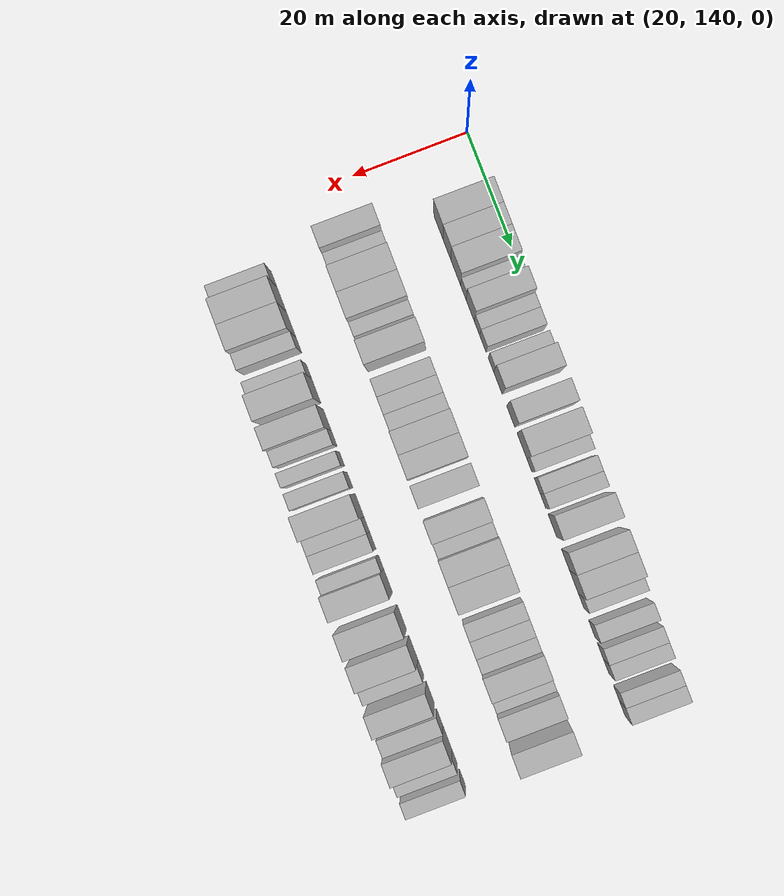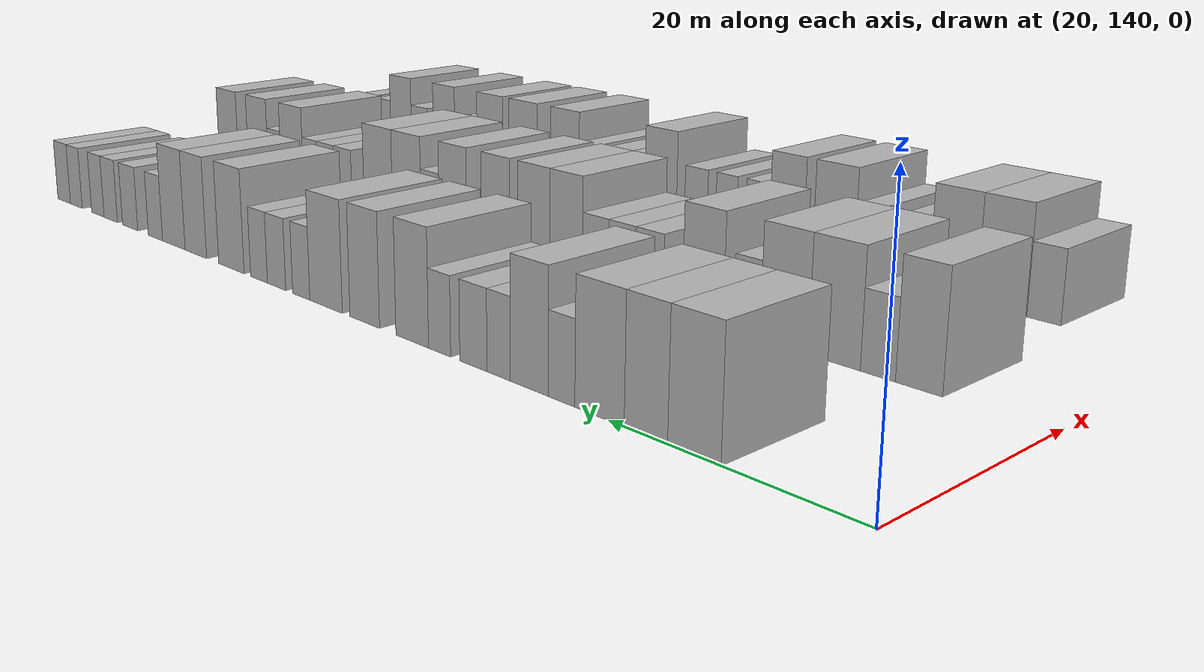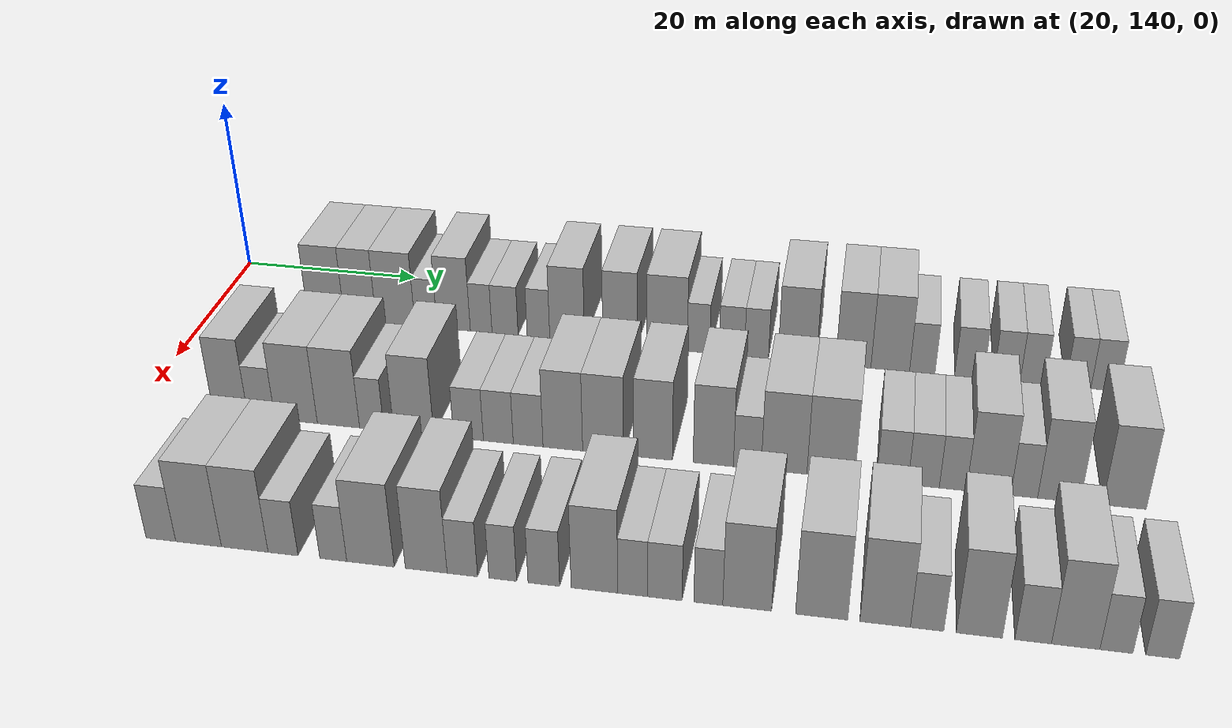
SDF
<sdf version="1.6">
 <world name="default">
  <model name="building_88">
   <static>1</static>
   <pose>25.0000 152.9174 0 0.000000 0.000000 0.000000</pose>
   <link name="link">
    <pose>0 0 4.50 0 0 0</pose>
    <collision name="collision"><geometry><box><size>10.0000 4.2095 9.0000</size></box></geometry></collision>
    <visual name="visual">
     <cast_shadows>0</cast_shadows>
     <geometry><box><size>10.0000 4.2095 9.0000</size></box></geometry>
     <material>
      <script>
       <uri>model://HANNAS_wall/materials/scripts</uri>
       <uri>model://HANNAS_wall/materials/textures</uri>
       <name>vrc/HANNAS_wall</name>
      </script>
     </material>
    </visual>
   </link>
  </model>
  <model name="building_89">
   <static>1</static>
   <pose>25.0000 156.8447 0 0.000000 0.000000 0.000000</pose>
   <link name="link">
    <pose>0 0 4.50 0 0 0</pose>
    <collision name="collision"><geometry><box><size>10.0000 3.6452 9.0000</size></box></geometry></collision>
    <visual name="visual">
     <cast_shadows>0</cast_shadows>
     <geometry><box><size>10.0000 3.6452 9.0000</size></box></geometry>
     <material>
      <script>
       <uri>model://HANNAS_wall/materials/scripts</uri>
       <uri>model://HANNAS_wall/materials/textures</uri>
       <name>vrc/HANNAS_wall</name>
      </script>
     </material>
    </visual>
   </link>
  </model>
  <model name="building_90">
   <static>1</static>
   <pose>25.0000 160.8700 0 0.000000 0.000000 0.000000</pose>
   <link name="link">
    <pose>0 0 4.50 0 0 0</pose>
    <collision name="collision"><geometry><box><size>10.0000 4.4053 9.0000</size></box></geometry></collision>
    <visual name="visual">
     <cast_shadows>0</cast_shadows>
     <geometry><box><size>10.0000 4.4053 9.0000</size></box></geometry>
     <material>
      <script>
       <uri>model://HANNAS_wall/materials/scripts</uri>
       <uri>model://HANNAS_wall/materials/textures</uri>
       <name>vrc/HANNAS_wall</name>
      </script>
     </material>
    </visual>
   </link>
  </model>
  <model name="building_91">
   <static>1</static>
   <pose>25.0000 164.3211 0 0.000000 0.000000 0.000000</pose>
   <link name="link">
    <pose>0 0 3.00 0 0 0</pose>
    <collision name="collision"><geometry><box><size>10.0000 2.4969 6.0000</size></box></geometry></collision>
    <visual name="visual">
     <cast_shadows>0</cast_shadows>
     <geometry><box><size>10.0000 2.4969 6.0000</size></box></geometry>
     <material>
      <script>
       <uri>model://HANNAS_wall/materials/scripts</uri>
       <uri>model://HANNAS_wall/materials/textures</uri>
       <name>vrc/HANNAS_wall</name>
      </script>
     </material>
    </visual>
   </link>
  </model>
  <model name="building_92">
   <static>1</static>
   <pose>25.0000 167.4333 0 0.000000 0.000000 0.000000</pose>
   <link name="link">
    <pose>0 0 4.50 0 0 0</pose>
    <collision name="collision"><geometry><box><size>10.0000 3.7276 9.0000</size></box></geometry></collision>
    <visual name="visual">
     <cast_shadows>0</cast_shadows>
     <geometry><box><size>10.0000 3.7276 9.0000</size></box></geometry>
     <material>
      <script>
       <uri>model://HANNAS_wall/materials/scripts</uri>
       <uri>model://HANNAS_wall/materials/textures</uri>
       <name>vrc/HANNAS_wall</name>
      </script>
     </material>
    </visual>
   </link>
  </model>
  <model name="building_93">
   <static>1</static>
   <pose>25.0000 170.5028 0 0.000000 0.000000 0.000000</pose>
   <link name="link">
    <pose>0 0 3.00 0 0 0</pose>
    <collision name="collision"><geometry><box><size>10.0000 2.4114 6.0000</size></box></geometry></collision>
    <visual name="visual">
     <cast_shadows>0</cast_shadows>
     <geometry><box><size>10.0000 2.4114 6.0000</size></box></geometry>
     <material>
      <script>
       <uri>model://HANNAS_wall/materials/scripts</uri>
       <uri>model://HANNAS_wall/materials/textures</uri>
       <name>vrc/HANNAS_wall</name>
      </script>
     </material>
    </visual>
   </link>
  </model>
  <model name="building_94">
   <static>1</static>
   <pose>25.0000 173.1614 0 0.000000 0.000000 0.000000</pose>
   <link name="link">
    <pose>0 0 3.00 0 0 0</pose>
    <collision name="collision"><geometry><box><size>10.0000 2.9058 6.0000</size></box></geometry></collision>
    <visual name="visual">
     <cast_shadows>0</cast_shadows>
     <geometry><box><size>10.0000 2.9058 6.0000</size></box></geometry>
     <material>
      <script>
       <uri>model://HANNAS_wall/materials/scripts</uri>
       <uri>model://HANNAS_wall/materials/textures</uri>
       <name>vrc/HANNAS_wall</name>
      </script>
     </material>
    </visual>
   </link>
  </model>
  <model name="building_95">
   <static>1</static>
   <pose>25.0000 176.8598 0 0.000000 0.000000 0.000000</pose>
   <link name="link">
    <pose>0 0 3.00 0 0 0</pose>
    <collision name="collision"><geometry><box><size>10.0000 2.4910 6.0000</size></box></geometry></collision>
    <visual name="visual">
     <cast_shadows>0</cast_shadows>
     <geometry><box><size>10.0000 2.4910 6.0000</size></box></geometry>
     <material>
      <script>
       <uri>model://HANNAS_wall/materials/scripts</uri>
       <uri>model://HANNAS_wall/materials/textures</uri>
       <name>vrc/HANNAS_wall</name>
      </script>
     </material>
    </visual>
   </link>
  </model>
  <model name="building_96">
   <static>1</static>
   <pose>25.0000 180.0171 0 0.000000 0.000000 0.000000</pose>
   <link name="link">
    <pose>0 0 4.50 0 0 0</pose>
    <collision name="collision"><geometry><box><size>10.0000 3.8236 9.0000</size></box></geometry></collision>
    <visual name="visual">
     <cast_shadows>0</cast_shadows>
     <geometry><box><size>10.0000 3.8236 9.0000</size></box></geometry>
     <material>
      <script>
       <uri>model://HANNAS_wall/materials/scripts</uri>
       <uri>model://HANNAS_wall/materials/textures</uri>
       <name>vrc/HANNAS_wall</name>
      </script>
     </material>
    </visual>
   </link>
  </model>
  <model name="building_97">
   <static>1</static>
   <pose>25.0000 185.7977 0 0.000000 0.000000 0.000000</pose>
   <link name="link">
    <pose>0 0 4.50 0 0 0</pose>
    <collision name="collision"><geometry><box><size>10.0000 3.7378 9.0000</size></box></geometry></collision>
    <visual name="visual">
     <cast_shadows>0</cast_shadows>
     <geometry><box><size>10.0000 3.7378 9.0000</size></box></geometry>
     <material>
      <script>
       <uri>model://HANNAS_wall/materials/scripts</uri>
       <uri>model://HANNAS_wall/materials/textures</uri>
       <name>vrc/HANNAS_wall</name>
      </script>
     </material>
    </visual>
   </link>
  </model>
  <model name="building_98">
   <static>1</static>
   <pose>25.0000 190.8588 0 0.000000 0.000000 0.000000</pose>
   <link name="link">
    <pose>0 0 4.50 0 0 0</pose>
    <collision name="collision"><geometry><box><size>10.0000 4.3843 9.0000</size></box></geometry></collision>
    <visual name="visual">
     <cast_shadows>0</cast_shadows>
     <geometry><box><size>10.0000 4.3843 9.0000</size></box></geometry>
     <material>
      <script>
       <uri>model://HANNAS_wall/materials/scripts</uri>
       <uri>model://HANNAS_wall/materials/textures</uri>
       <name>vrc/HANNAS_wall</name>
      </script>
     </material>
    </visual>
   </link>
  </model>
  <model name="building_99">
   <static>1</static>
   <pose>25.0000 194.2553 0 0.000000 0.000000 0.000000</pose>
   <link name="link">
    <pose>0 0 3.00 0 0 0</pose>
    <collision name="collision"><geometry><box><size>10.0000 2.4088 6.0000</size></box></geometry></collision>
    <visual name="visual">
     <cast_shadows>0</cast_shadows>
     <geometry><box><size>10.0000 2.4088 6.0000</size></box></geometry>
     <material>
      <script>
       <uri>model://HANNAS_wall/materials/scripts</uri>
       <uri>model://HANNAS_wall/materials/textures</uri>
       <name>vrc/HANNAS_wall</name>
      </script>
     </material>
    </visual>
   </link>
  </model>
  <model name="building_100">
   <static>1</static>
   <pose>25.0000 197.8041 0 0.000000 0.000000 0.000000</pose>
   <link name="link">
    <pose>0 0 3.00 0 0 0</pose>
    <collision name="collision"><geometry><box><size>10.0000 2.6887 6.0000</size></box></geometry></collision>
    <visual name="visual">
     <cast_shadows>0</cast_shadows>
     <geometry><box><size>10.0000 2.6887 6.0000</size></box></geometry>
     <material>
      <script>
       <uri>model://HANNAS_wall/materials/scripts</uri>
       <uri>model://HANNAS_wall/materials/textures</uri>
       <name>vrc/HANNAS_wall</name>
      </script>
     </material>
    </visual>
   </link>
  </model>
  <model name="building_101">
   <static>1</static>
   <pose>25.0000 200.4228 0 0.000000 0.000000 0.000000</pose>
   <link name="link">
    <pose>0 0 3.00 0 0 0</pose>
    <collision name="collision"><geometry><box><size>10.0000 2.5487 6.0000</size></box></geometry></collision>
    <visual name="visual">
     <cast_shadows>0</cast_shadows>
     <geometry><box><size>10.0000 2.5487 6.0000</size></box></geometry>
     <material>
      <script>
       <uri>model://HANNAS_wall/materials/scripts</uri>
       <uri>model://HANNAS_wall/materials/textures</uri>
       <name>vrc/HANNAS_wall</name>
      </script>
     </material>
    </visual>
   </link>
  </model>
  <model name="building_102">
   <static>1</static>
   <pose>25.0000 204.7182 0 0.000000 0.000000 0.000000</pose>
   <link name="link">
    <pose>0 0 4.50 0 0 0</pose>
    <collision name="collision"><geometry><box><size>10.0000 4.0421 9.0000</size></box></geometry></collision>
    <visual name="visual">
     <cast_shadows>0</cast_shadows>
     <geometry><box><size>10.0000 4.0421 9.0000</size></box></geometry>
     <material>
      <script>
       <uri>model://HANNAS_wall/materials/scripts</uri>
       <uri>model://HANNAS_wall/materials/textures</uri>
       <name>vrc/HANNAS_wall</name>
      </script>
     </material>
    </visual>
   </link>
  </model>
  <model name="building_103">
   <static>1</static>
   <pose>25.0000 210.5705 0 0.000000 0.000000 0.000000</pose>
   <link name="link">
    <pose>0 0 4.50 0 0 0</pose>
    <collision name="collision"><geometry><box><size>10.0000 3.6625 9.0000</size></box></geometry></collision>
    <visual name="visual">
     <cast_shadows>0</cast_shadows>
     <geometry><box><size>10.0000 3.6625 9.0000</size></box></geometry>
     <material>
      <script>
       <uri>model://HANNAS_wall/materials/scripts</uri>
       <uri>model://HANNAS_wall/materials/textures</uri>
       <name>vrc/HANNAS_wall</name>
      </script>
     </material>
    </visual>
   </link>
  </model>
  <model name="building_104">
   <static>1</static>
   <pose>25.0000 214.3984 0 0.000000 0.000000 0.000000</pose>
   <link name="link">
    <pose>0 0 4.50 0 0 0</pose>
    <collision name="collision"><geometry><box><size>10.0000 3.9932 9.0000</size></box></geometry></collision>
    <visual name="visual">
     <cast_shadows>0</cast_shadows>
     <geometry><box><size>10.0000 3.9932 9.0000</size></box></geometry>
     <material>
      <script>
       <uri>model://HANNAS_wall/materials/scripts</uri>
       <uri>model://HANNAS_wall/materials/textures</uri>
       <name>vrc/HANNAS_wall</name>
      </script>
     </material>
    </visual>
   </link>
  </model>
  <model name="building_105">
   <static>1</static>
   <pose>25.0000 217.6991 0 0.000000 0.000000 0.000000</pose>
   <link name="link">
    <pose>0 0 3.00 0 0 0</pose>
    <collision name="collision"><geometry><box><size>10.0000 2.6081 6.0000</size></box></geometry></collision>
    <visual name="visual">
     <cast_shadows>0</cast_shadows>
     <geometry><box><size>10.0000 2.6081 6.0000</size></box></geometry>
     <material>
      <script>
       <uri>model://HANNAS_wall/materials/scripts</uri>
       <uri>model://HANNAS_wall/materials/textures</uri>
       <name>vrc/HANNAS_wall</name>
      </script>
     </material>
    </visual>
   </link>
  </model>
  <model name="building_106">
   <static>1</static>
   <pose>25.0000 222.4741 0 0.000000 0.000000 0.000000</pose>
   <link name="link">
    <pose>0 0 3.00 0 0 0</pose>
    <collision name="collision"><geometry><box><size>10.0000 2.9419 6.0000</size></box></geometry></collision>
    <visual name="visual">
     <cast_shadows>0</cast_shadows>
     <geometry><box><size>10.0000 2.9419 6.0000</size></box></geometry>
     <material>
      <script>
       <uri>model://HANNAS_wall/materials/scripts</uri>
       <uri>model://HANNAS_wall/materials/textures</uri>
       <name>vrc/HANNAS_wall</name>
      </script>
     </material>
    </visual>
   </link>
  </model>
  <model name="building_107">
   <static>1</static>
   <pose>25.0000 226.2903 0 0.000000 0.000000 0.000000</pose>
   <link name="link">
    <pose>0 0 3.00 0 0 0</pose>
    <collision name="collision"><geometry><box><size>10.0000 2.6904 6.0000</size></box></geometry></collision>
    <visual name="visual">
     <cast_shadows>0</cast_shadows>
     <geometry><box><size>10.0000 2.6904 6.0000</size></box></geometry>
     <material>
      <script>
       <uri>model://HANNAS_wall/materials/scripts</uri>
       <uri>model://HANNAS_wall/materials/textures</uri>
       <name>vrc/HANNAS_wall</name>
      </script>
     </material>
    </visual>
   </link>
  </model>
  <model name="building_108">
   <static>1</static>
   <pose>25.0000 228.9185 0 0.000000 0.000000 0.000000</pose>
   <link name="link">
    <pose>0 0 3.00 0 0 0</pose>
    <collision name="collision"><geometry><box><size>10.0000 2.5660 6.0000</size></box></geometry></collision>
    <visual name="visual">
     <cast_shadows>0</cast_shadows>
     <geometry><box><size>10.0000 2.5660 6.0000</size></box></geometry>
     <material>
      <script>
       <uri>model://HANNAS_wall/materials/scripts</uri>
       <uri>model://HANNAS_wall/materials/textures</uri>
       <name>vrc/HANNAS_wall</name>
      </script>
     </material>
    </visual>
   </link>
  </model>
  <model name="building_109">
   <static>1</static>
   <pose>25.0000 233.4652 0 0.000000 0.000000 0.000000</pose>
   <link name="link">
    <pose>0 0 3.00 0 0 0</pose>
    <collision name="collision"><geometry><box><size>10.0000 2.5274 6.0000</size></box></geometry></collision>
    <visual name="visual">
     <cast_shadows>0</cast_shadows>
     <geometry><box><size>10.0000 2.5274 6.0000</size></box></geometry>
     <material>
      <script>
       <uri>model://HANNAS_wall/materials/scripts</uri>
       <uri>model://HANNAS_wall/materials/textures</uri>
       <name>vrc/HANNAS_wall</name>
      </script>
     </material>
    </visual>
   </link>
  </model>
  <model name="building_110">
   <static>1</static>
   <pose>25.0000 236.1146 0 0.000000 0.000000 0.000000</pose>
   <link name="link">
    <pose>0 0 3.00 0 0 0</pose>
    <collision name="collision"><geometry><box><size>10.0000 2.7714 6.0000</size></box></geometry></collision>
    <visual name="visual">
     <cast_shadows>0</cast_shadows>
     <geometry><box><size>10.0000 2.7714 6.0000</size></box></geometry>
     <material>
      <script>
       <uri>model://HANNAS_wall/materials/scripts</uri>
       <uri>model://HANNAS_wall/materials/textures</uri>
       <name>vrc/HANNAS_wall</name>
      </script>
     </material>
    </visual>
   </link>
  </model>
  <model name="building_203">
   <static>1</static>
   <pose>44.0000 149.8460 0 0.000000 0.000000 0.000000</pose>
   <link name="link">
    <pose>0 0 4.50 0 0 0</pose>
    <collision name="collision"><geometry><box><size>10.0000 3.6402 9.0000</size></box></geometry></collision>
    <visual name="visual">
     <cast_shadows>0</cast_shadows>
     <geometry><box><size>10.0000 3.6402 9.0000</size></box></geometry>
     <material>
      <script>
       <uri>model://HANNAS_wall/materials/scripts</uri>
       <uri>model://HANNAS_wall/materials/textures</uri>
       <name>vrc/HANNAS_wall</name>
      </script>
     </material>
    </visual>
   </link>
  </model>
  <model name="building_204">
   <static>1</static>
   <pose>44.0000 153.0806 0 0.000000 0.000000 0.000000</pose>
   <link name="link">
    <pose>0 0 3.00 0 0 0</pose>
    <collision name="collision"><geometry><box><size>10.0000 2.8291 6.0000</size></box></geometry></collision>
    <visual name="visual">
     <cast_shadows>0</cast_shadows>
     <geometry><box><size>10.0000 2.8291 6.0000</size></box></geometry>
     <material>
      <script>
       <uri>model://HANNAS_wall/materials/scripts</uri>
       <uri>model://HANNAS_wall/materials/textures</uri>
       <name>vrc/HANNAS_wall</name>
      </script>
     </material>
    </visual>
   </link>
  </model>
  <model name="building_205">
   <static>1</static>
   <pose>44.0000 156.6990 0 0.000000 0.000000 0.000000</pose>
   <link name="link">
    <pose>0 0 4.50 0 0 0</pose>
    <collision name="collision"><geometry><box><size>10.0000 4.4077 9.0000</size></box></geometry></collision>
    <visual name="visual">
     <cast_shadows>0</cast_shadows>
     <geometry><box><size>10.0000 4.4077 9.0000</size></box></geometry>
     <material>
      <script>
       <uri>model://HANNAS_wall/materials/scripts</uri>
       <uri>model://HANNAS_wall/materials/textures</uri>
       <name>vrc/HANNAS_wall</name>
      </script>
     </material>
    </visual>
   </link>
  </model>
  <model name="building_206">
   <static>1</static>
   <pose>44.0000 161.0784 0 0.000000 0.000000 0.000000</pose>
   <link name="link">
    <pose>0 0 4.50 0 0 0</pose>
    <collision name="collision"><geometry><box><size>10.0000 4.3512 9.0000</size></box></geometry></collision>
    <visual name="visual">
     <cast_shadows>0</cast_shadows>
     <geometry><box><size>10.0000 4.3512 9.0000</size></box></geometry>
     <material>
      <script>
       <uri>model://HANNAS_wall/materials/scripts</uri>
       <uri>model://HANNAS_wall/materials/textures</uri>
       <name>vrc/HANNAS_wall</name>
      </script>
     </material>
    </visual>
   </link>
  </model>
  <model name="building_207">
   <static>1</static>
   <pose>44.0000 164.5010 0 0.000000 0.000000 0.000000</pose>
   <link name="link">
    <pose>0 0 3.00 0 0 0</pose>
    <collision name="collision"><geometry><box><size>10.0000 2.4940 6.0000</size></box></geometry></collision>
    <visual name="visual">
     <cast_shadows>0</cast_shadows>
     <geometry><box><size>10.0000 2.4940 6.0000</size></box></geometry>
     <material>
      <script>
       <uri>model://HANNAS_wall/materials/scripts</uri>
       <uri>model://HANNAS_wall/materials/textures</uri>
       <name>vrc/HANNAS_wall</name>
      </script>
     </material>
    </visual>
   </link>
  </model>
  <model name="building_208">
   <static>1</static>
   <pose>44.0000 168.7801 0 0.000000 0.000000 0.000000</pose>
   <link name="link">
    <pose>0 0 4.50 0 0 0</pose>
    <collision name="collision"><geometry><box><size>10.0000 4.0643 9.0000</size></box></geometry></collision>
    <visual name="visual">
     <cast_shadows>0</cast_shadows>
     <geometry><box><size>10.0000 4.0643 9.0000</size></box></geometry>
     <material>
      <script>
       <uri>model://HANNAS_wall/materials/scripts</uri>
       <uri>model://HANNAS_wall/materials/textures</uri>
       <name>vrc/HANNAS_wall</name>
      </script>
     </material>
    </visual>
   </link>
  </model>
  <model name="building_209">
   <static>1</static>
   <pose>44.0000 174.3055 0 0.000000 0.000000 0.000000</pose>
   <link name="link">
    <pose>0 0 3.00 0 0 0</pose>
    <collision name="collision"><geometry><box><size>10.0000 2.9864 6.0000</size></box></geometry></collision>
    <visual name="visual">
     <cast_shadows>0</cast_shadows>
     <geometry><box><size>10.0000 2.9864 6.0000</size></box></geometry>
     <material>
      <script>
       <uri>model://HANNAS_wall/materials/scripts</uri>
       <uri>model://HANNAS_wall/materials/textures</uri>
       <name>vrc/HANNAS_wall</name>
      </script>
     </material>
    </visual>
   </link>
  </model>
  <model name="building_210">
   <static>1</static>
   <pose>44.0000 177.2898 0 0.000000 0.000000 0.000000</pose>
   <link name="link">
    <pose>0 0 3.00 0 0 0</pose>
    <collision name="collision"><geometry><box><size>10.0000 2.9822 6.0000</size></box></geometry></collision>
    <visual name="visual">
     <cast_shadows>0</cast_shadows>
     <geometry><box><size>10.0000 2.9822 6.0000</size></box></geometry>
     <material>
      <script>
       <uri>model://HANNAS_wall/materials/scripts</uri>
       <uri>model://HANNAS_wall/materials/textures</uri>
       <name>vrc/HANNAS_wall</name>
      </script>
     </material>
    </visual>
   </link>
  </model>
  <model name="building_211">
   <static>1</static>
   <pose>44.0000 180.2552 0 0.000000 0.000000 0.000000</pose>
   <link name="link">
    <pose>0 0 3.00 0 0 0</pose>
    <collision name="collision"><geometry><box><size>10.0000 2.9485 6.0000</size></box></geometry></collision>
    <visual name="visual">
     <cast_shadows>0</cast_shadows>
     <geometry><box><size>10.0000 2.9485 6.0000</size></box></geometry>
     <material>
      <script>
       <uri>model://HANNAS_wall/materials/scripts</uri>
       <uri>model://HANNAS_wall/materials/textures</uri>
       <name>vrc/HANNAS_wall</name>
      </script>
     </material>
    </visual>
   </link>
  </model>
  <model name="building_212">
   <static>1</static>
   <pose>44.0000 183.6826 0 0.000000 0.000000 0.000000</pose>
   <link name="link">
    <pose>0 0 4.50 0 0 0</pose>
    <collision name="collision"><geometry><box><size>10.0000 3.9062 9.0000</size></box></geometry></collision>
    <visual name="visual">
     <cast_shadows>0</cast_shadows>
     <geometry><box><size>10.0000 3.9062 9.0000</size></box></geometry>
     <material>
      <script>
       <uri>model://HANNAS_wall/materials/scripts</uri>
       <uri>model://HANNAS_wall/materials/textures</uri>
       <name>vrc/HANNAS_wall</name>
      </script>
     </material>
    </visual>
   </link>
  </model>
  <model name="building_213">
   <static>1</static>
   <pose>44.0000 187.6325 0 0.000000 0.000000 0.000000</pose>
   <link name="link">
    <pose>0 0 4.50 0 0 0</pose>
    <collision name="collision"><geometry><box><size>10.0000 3.9936 9.0000</size></box></geometry></collision>
    <visual name="visual">
     <cast_shadows>0</cast_shadows>
     <geometry><box><size>10.0000 3.9936 9.0000</size></box></geometry>
     <material>
      <script>
       <uri>model://HANNAS_wall/materials/scripts</uri>
       <uri>model://HANNAS_wall/materials/textures</uri>
       <name>vrc/HANNAS_wall</name>
      </script>
     </material>
    </visual>
   </link>
  </model>
  <model name="building_214">
   <static>1</static>
   <pose>44.0000 192.4968 0 0.000000 0.000000 0.000000</pose>
   <link name="link">
    <pose>0 0 4.50 0 0 0</pose>
    <collision name="collision"><geometry><box><size>10.0000 3.7351 9.0000</size></box></geometry></collision>
    <visual name="visual">
     <cast_shadows>0</cast_shadows>
     <geometry><box><size>10.0000 3.7351 9.0000</size></box></geometry>
     <material>
      <script>
       <uri>model://HANNAS_wall/materials/scripts</uri>
       <uri>model://HANNAS_wall/materials/textures</uri>
       <name>vrc/HANNAS_wall</name>
      </script>
     </material>
    </visual>
   </link>
  </model>
  <model name="building_215">
   <static>1</static>
   <pose>44.0000 198.2891 0 0.000000 0.000000 0.000000</pose>
   <link name="link">
    <pose>0 0 4.50 0 0 0</pose>
    <collision name="collision"><geometry><box><size>10.0000 3.8494 9.0000</size></box></geometry></collision>
    <visual name="visual">
     <cast_shadows>0</cast_shadows>
     <geometry><box><size>10.0000 3.8494 9.0000</size></box></geometry>
     <material>
      <script>
       <uri>model://HANNAS_wall/materials/scripts</uri>
       <uri>model://HANNAS_wall/materials/textures</uri>
       <name>vrc/HANNAS_wall</name>
      </script>
     </material>
    </visual>
   </link>
  </model>
  <model name="building_216">
   <static>1</static>
   <pose>44.0000 201.5359 0 0.000000 0.000000 0.000000</pose>
   <link name="link">
    <pose>0 0 3.00 0 0 0</pose>
    <collision name="collision"><geometry><box><size>10.0000 2.6443 6.0000</size></box></geometry></collision>
    <visual name="visual">
     <cast_shadows>0</cast_shadows>
     <geometry><box><size>10.0000 2.6443 6.0000</size></box></geometry>
     <material>
      <script>
       <uri>model://HANNAS_wall/materials/scripts</uri>
       <uri>model://HANNAS_wall/materials/textures</uri>
       <name>vrc/HANNAS_wall</name>
      </script>
     </material>
    </visual>
   </link>
  </model>
  <model name="building_217">
   <static>1</static>
   <pose>44.0000 205.0176 0 0.000000 0.000000 0.000000</pose>
   <link name="link">
    <pose>0 0 4.50 0 0 0</pose>
    <collision name="collision"><geometry><box><size>10.0000 4.3190 9.0000</size></box></geometry></collision>
    <visual name="visual">
     <cast_shadows>0</cast_shadows>
     <geometry><box><size>10.0000 4.3190 9.0000</size></box></geometry>
     <material>
      <script>
       <uri>model://HANNAS_wall/materials/scripts</uri>
       <uri>model://HANNAS_wall/materials/textures</uri>
       <name>vrc/HANNAS_wall</name>
      </script>
     </material>
    </visual>
   </link>
  </model>
  <model name="building_218">
   <static>1</static>
   <pose>44.0000 209.4158 0 0.000000 0.000000 0.000000</pose>
   <link name="link">
    <pose>0 0 4.50 0 0 0</pose>
    <collision name="collision"><geometry><box><size>10.0000 4.4775 9.0000</size></box></geometry></collision>
    <visual name="visual">
     <cast_shadows>0</cast_shadows>
     <geometry><box><size>10.0000 4.4775 9.0000</size></box></geometry>
     <material>
      <script>
       <uri>model://HANNAS_wall/materials/scripts</uri>
       <uri>model://HANNAS_wall/materials/textures</uri>
       <name>vrc/HANNAS_wall</name>
      </script>
     </material>
    </visual>
   </link>
  </model>
  <model name="building_219">
   <static>1</static>
   <pose>44.0000 215.1165 0 0.000000 0.000000 0.000000</pose>
   <link name="link">
    <pose>0 0 3.00 0 0 0</pose>
    <collision name="collision"><geometry><box><size>10.0000 2.9238 6.0000</size></box></geometry></collision>
    <visual name="visual">
     <cast_shadows>0</cast_shadows>
     <geometry><box><size>10.0000 2.9238 6.0000</size></box></geometry>
     <material>
      <script>
       <uri>model://HANNAS_wall/materials/scripts</uri>
       <uri>model://HANNAS_wall/materials/textures</uri>
       <name>vrc/HANNAS_wall</name>
      </script>
     </material>
    </visual>
   </link>
  </model>
  <model name="building_220">
   <static>1</static>
   <pose>44.0000 218.0227 0 0.000000 0.000000 0.000000</pose>
   <link name="link">
    <pose>0 0 3.00 0 0 0</pose>
    <collision name="collision"><geometry><box><size>10.0000 2.8886 6.0000</size></box></geometry></collision>
    <visual name="visual">
     <cast_shadows>0</cast_shadows>
     <geometry><box><size>10.0000 2.8886 6.0000</size></box></geometry>
     <material>
      <script>
       <uri>model://HANNAS_wall/materials/scripts</uri>
       <uri>model://HANNAS_wall/materials/textures</uri>
       <name>vrc/HANNAS_wall</name>
      </script>
     </material>
    </visual>
   </link>
  </model>
  <model name="building_221">
   <static>1</static>
   <pose>44.0000 220.7112 0 0.000000 0.000000 0.000000</pose>
   <link name="link">
    <pose>0 0 3.00 0 0 0</pose>
    <collision name="collision"><geometry><box><size>10.0000 2.4885 6.0000</size></box></geometry></collision>
    <visual name="visual">
     <cast_shadows>0</cast_shadows>
     <geometry><box><size>10.0000 2.4885 6.0000</size></box></geometry>
     <material>
      <script>
       <uri>model://HANNAS_wall/materials/scripts</uri>
       <uri>model://HANNAS_wall/materials/textures</uri>
       <name>vrc/HANNAS_wall</name>
      </script>
     </material>
    </visual>
   </link>
  </model>
  <model name="building_222">
   <static>1</static>
   <pose>44.0000 223.9634 0 0.000000 0.000000 0.000000</pose>
   <link name="link">
    <pose>0 0 4.50 0 0 0</pose>
    <collision name="collision"><geometry><box><size>10.0000 4.0158 9.0000</size></box></geometry></collision>
    <visual name="visual">
     <cast_shadows>0</cast_shadows>
     <geometry><box><size>10.0000 4.0158 9.0000</size></box></geometry>
     <material>
      <script>
       <uri>model://HANNAS_wall/materials/scripts</uri>
       <uri>model://HANNAS_wall/materials/textures</uri>
       <name>vrc/HANNAS_wall</name>
      </script>
     </material>
    </visual>
   </link>
  </model>
  <model name="building_223">
   <static>1</static>
   <pose>44.0000 227.1885 0 0.000000 0.000000 0.000000</pose>
   <link name="link">
    <pose>0 0 3.00 0 0 0</pose>
    <collision name="collision"><geometry><box><size>10.0000 2.4344 6.0000</size></box></geometry></collision>
    <visual name="visual">
     <cast_shadows>0</cast_shadows>
     <geometry><box><size>10.0000 2.4344 6.0000</size></box></geometry>
     <material>
      <script>
       <uri>model://HANNAS_wall/materials/scripts</uri>
       <uri>model://HANNAS_wall/materials/textures</uri>
       <name>vrc/HANNAS_wall</name>
      </script>
     </material>
    </visual>
   </link>
  </model>
  <model name="building_224">
   <static>1</static>
   <pose>44.0000 230.3154 0 0.000000 0.000000 0.000000</pose>
   <link name="link">
    <pose>0 0 4.50 0 0 0</pose>
    <collision name="collision"><geometry><box><size>10.0000 3.8194 9.0000</size></box></geometry></collision>
    <visual name="visual">
     <cast_shadows>0</cast_shadows>
     <geometry><box><size>10.0000 3.8194 9.0000</size></box></geometry>
     <material>
      <script>
       <uri>model://HANNAS_wall/materials/scripts</uri>
       <uri>model://HANNAS_wall/materials/textures</uri>
       <name>vrc/HANNAS_wall</name>
      </script>
     </material>
    </visual>
   </link>
  </model>
  <model name="building_225">
   <static>1</static>
   <pose>44.0000 236.1610 0 0.000000 0.000000 0.000000</pose>
   <link name="link">
    <pose>0 0 4.50 0 0 0</pose>
    <collision name="collision"><geometry><box><size>10.0000 3.8718 9.0000</size></box></geometry></collision>
    <visual name="visual">
     <cast_shadows>0</cast_shadows>
     <geometry><box><size>10.0000 3.8718 9.0000</size></box></geometry>
     <material>
      <script>
       <uri>model://HANNAS_wall/materials/scripts</uri>
       <uri>model://HANNAS_wall/materials/textures</uri>
       <name>vrc/HANNAS_wall</name>
      </script>
     </material>
    </visual>
   </link>
  </model>
  <model name="building_321">
   <static>1</static>
   <pose>63.0000 151.3294 0 0.000000 0.000000 0.000000</pose>
   <link name="link">
    <pose>0 0 3.00 0 0 0</pose>
    <collision name="collision"><geometry><box><size>10.0000 2.7977 6.0000</size></box></geometry></collision>
    <visual name="visual">
     <cast_shadows>0</cast_shadows>
     <geometry><box><size>10.0000 2.7977 6.0000</size></box></geometry>
     <material>
      <script>
       <uri>model://HANNAS_wall/materials/scripts</uri>
       <uri>model://HANNAS_wall/materials/textures</uri>
       <name>vrc/HANNAS_wall</name>
      </script>
     </material>
    </visual>
   </link>
  </model>
  <model name="building_322">
   <static>1</static>
   <pose>63.0000 154.8723 0 0.000000 0.000000 0.000000</pose>
   <link name="link">
    <pose>0 0 4.50 0 0 0</pose>
    <collision name="collision"><geometry><box><size>10.0000 4.2880 9.0000</size></box></geometry></collision>
    <visual name="visual">
     <cast_shadows>0</cast_shadows>
     <geometry><box><size>10.0000 4.2880 9.0000</size></box></geometry>
     <material>
      <script>
       <uri>model://HANNAS_wall/materials/scripts</uri>
       <uri>model://HANNAS_wall/materials/textures</uri>
       <name>vrc/HANNAS_wall</name>
      </script>
     </material>
    </visual>
   </link>
  </model>
  <model name="building_323">
   <static>1</static>
   <pose>63.0000 159.1809 0 0.000000 0.000000 0.000000</pose>
   <link name="link">
    <pose>0 0 4.50 0 0 0</pose>
    <collision name="collision"><geometry><box><size>10.0000 4.3293 9.0000</size></box></geometry></collision>
    <visual name="visual">
     <cast_shadows>0</cast_shadows>
     <geometry><box><size>10.0000 4.3293 9.0000</size></box></geometry>
     <material>
      <script>
       <uri>model://HANNAS_wall/materials/scripts</uri>
       <uri>model://HANNAS_wall/materials/textures</uri>
       <name>vrc/HANNAS_wall</name>
      </script>
     </material>
    </visual>
   </link>
  </model>
  <model name="building_324">
   <static>1</static>
   <pose>63.0000 162.7279 0 0.000000 0.000000 0.000000</pose>
   <link name="link">
    <pose>0 0 3.00 0 0 0</pose>
    <collision name="collision"><geometry><box><size>10.0000 2.7648 6.0000</size></box></geometry></collision>
    <visual name="visual">
     <cast_shadows>0</cast_shadows>
     <geometry><box><size>10.0000 2.7648 6.0000</size></box></geometry>
     <material>
      <script>
       <uri>model://HANNAS_wall/materials/scripts</uri>
       <uri>model://HANNAS_wall/materials/textures</uri>
       <name>vrc/HANNAS_wall</name>
      </script>
     </material>
    </visual>
   </link>
  </model>
  <model name="building_325">
   <static>1</static>
   <pose>63.0000 167.3400 0 0.000000 0.000000 0.000000</pose>
   <link name="link">
    <pose>0 0 3.00 0 0 0</pose>
    <collision name="collision"><geometry><box><size>10.0000 2.4594 6.0000</size></box></geometry></collision>
    <visual name="visual">
     <cast_shadows>0</cast_shadows>
     <geometry><box><size>10.0000 2.4594 6.0000</size></box></geometry>
     <material>
      <script>
       <uri>model://HANNAS_wall/materials/scripts</uri>
       <uri>model://HANNAS_wall/materials/textures</uri>
       <name>vrc/HANNAS_wall</name>
      </script>
     </material>
    </visual>
   </link>
  </model>
  <model name="building_326">
   <static>1</static>
   <pose>63.0000 170.7201 0 0.000000 0.000000 0.000000</pose>
   <link name="link">
    <pose>0 0 4.50 0 0 0</pose>
    <collision name="collision"><geometry><box><size>10.0000 4.3008 9.0000</size></box></geometry></collision>
    <visual name="visual">
     <cast_shadows>0</cast_shadows>
     <geometry><box><size>10.0000 4.3008 9.0000</size></box></geometry>
     <material>
      <script>
       <uri>model://HANNAS_wall/materials/scripts</uri>
       <uri>model://HANNAS_wall/materials/textures</uri>
       <name>vrc/HANNAS_wall</name>
      </script>
     </material>
    </visual>
   </link>
  </model>
  <model name="building_327">
   <static>1</static>
   <pose>63.0000 175.7422 0 0.000000 0.000000 0.000000</pose>
   <link name="link">
    <pose>0 0 4.50 0 0 0</pose>
    <collision name="collision"><geometry><box><size>10.0000 3.7433 9.0000</size></box></geometry></collision>
    <visual name="visual">
     <cast_shadows>0</cast_shadows>
     <geometry><box><size>10.0000 3.7433 9.0000</size></box></geometry>
     <material>
      <script>
       <uri>model://HANNAS_wall/materials/scripts</uri>
       <uri>model://HANNAS_wall/materials/textures</uri>
       <name>vrc/HANNAS_wall</name>
      </script>
     </material>
    </visual>
   </link>
  </model>
  <model name="building_328">
   <static>1</static>
   <pose>63.0000 178.9692 0 0.000000 0.000000 0.000000</pose>
   <link name="link">
    <pose>0 0 3.00 0 0 0</pose>
    <collision name="collision"><geometry><box><size>10.0000 2.7108 6.0000</size></box></geometry></collision>
    <visual name="visual">
     <cast_shadows>0</cast_shadows>
     <geometry><box><size>10.0000 2.7108 6.0000</size></box></geometry>
     <material>
      <script>
       <uri>model://HANNAS_wall/materials/scripts</uri>
       <uri>model://HANNAS_wall/materials/textures</uri>
       <name>vrc/HANNAS_wall</name>
      </script>
     </material>
    </visual>
   </link>
  </model>
  <model name="building_329">
   <static>1</static>
   <pose>63.0000 182.5510 0 0.000000 0.000000 0.000000</pose>
   <link name="link">
    <pose>0 0 3.00 0 0 0</pose>
    <collision name="collision"><geometry><box><size>10.0000 2.4527 6.0000</size></box></geometry></collision>
    <visual name="visual">
     <cast_shadows>0</cast_shadows>
     <geometry><box><size>10.0000 2.4527 6.0000</size></box></geometry>
     <material>
      <script>
       <uri>model://HANNAS_wall/materials/scripts</uri>
       <uri>model://HANNAS_wall/materials/textures</uri>
       <name>vrc/HANNAS_wall</name>
      </script>
     </material>
    </visual>
   </link>
  </model>
  <model name="building_330">
   <static>1</static>
   <pose>63.0000 186.1634 0 0.000000 0.000000 0.000000</pose>
   <link name="link">
    <pose>0 0 3.00 0 0 0</pose>
    <collision name="collision"><geometry><box><size>10.0000 2.7721 6.0000</size></box></geometry></collision>
    <visual name="visual">
     <cast_shadows>0</cast_shadows>
     <geometry><box><size>10.0000 2.7721 6.0000</size></box></geometry>
     <material>
      <script>
       <uri>model://HANNAS_wall/materials/scripts</uri>
       <uri>model://HANNAS_wall/materials/textures</uri>
       <name>vrc/HANNAS_wall</name>
      </script>
     </material>
    </visual>
   </link>
  </model>
  <model name="building_331">
   <static>1</static>
   <pose>63.0000 190.5709 0 0.000000 0.000000 0.000000</pose>
   <link name="link">
    <pose>0 0 4.50 0 0 0</pose>
    <collision name="collision"><geometry><box><size>10.0000 4.0429 9.0000</size></box></geometry></collision>
    <visual name="visual">
     <cast_shadows>0</cast_shadows>
     <geometry><box><size>10.0000 4.0429 9.0000</size></box></geometry>
     <material>
      <script>
       <uri>model://HANNAS_wall/materials/scripts</uri>
       <uri>model://HANNAS_wall/materials/textures</uri>
       <name>vrc/HANNAS_wall</name>
      </script>
     </material>
    </visual>
   </link>
  </model>
  <model name="building_332">
   <static>1</static>
   <pose>63.0000 193.8750 0 0.000000 0.000000 0.000000</pose>
   <link name="link">
    <pose>0 0 3.00 0 0 0</pose>
    <collision name="collision"><geometry><box><size>10.0000 2.5653 6.0000</size></box></geometry></collision>
    <visual name="visual">
     <cast_shadows>0</cast_shadows>
     <geometry><box><size>10.0000 2.5653 6.0000</size></box></geometry>
     <material>
      <script>
       <uri>model://HANNAS_wall/materials/scripts</uri>
       <uri>model://HANNAS_wall/materials/textures</uri>
       <name>vrc/HANNAS_wall</name>
      </script>
     </material>
    </visual>
   </link>
  </model>
  <model name="building_333">
   <static>1</static>
   <pose>63.0000 196.6317 0 0.000000 0.000000 0.000000</pose>
   <link name="link">
    <pose>0 0 3.00 0 0 0</pose>
    <collision name="collision"><geometry><box><size>10.0000 2.9482 6.0000</size></box></geometry></collision>
    <visual name="visual">
     <cast_shadows>0</cast_shadows>
     <geometry><box><size>10.0000 2.9482 6.0000</size></box></geometry>
     <material>
      <script>
       <uri>model://HANNAS_wall/materials/scripts</uri>
       <uri>model://HANNAS_wall/materials/textures</uri>
       <name>vrc/HANNAS_wall</name>
      </script>
     </material>
    </visual>
   </link>
  </model>
  <model name="building_334">
   <static>1</static>
   <pose>63.0000 200.3312 0 0.000000 0.000000 0.000000</pose>
   <link name="link">
    <pose>0 0 3.00 0 0 0</pose>
    <collision name="collision"><geometry><box><size>10.0000 2.4507 6.0000</size></box></geometry></collision>
    <visual name="visual">
     <cast_shadows>0</cast_shadows>
     <geometry><box><size>10.0000 2.4507 6.0000</size></box></geometry>
     <material>
      <script>
       <uri>model://HANNAS_wall/materials/scripts</uri>
       <uri>model://HANNAS_wall/materials/textures</uri>
       <name>vrc/HANNAS_wall</name>
      </script>
     </material>
    </visual>
   </link>
  </model>
  <model name="building_335">
   <static>1</static>
   <pose>63.0000 203.6138 0 0.000000 0.000000 0.000000</pose>
   <link name="link">
    <pose>0 0 4.50 0 0 0</pose>
    <collision name="collision"><geometry><box><size>10.0000 4.1145 9.0000</size></box></geometry></collision>
    <visual name="visual">
     <cast_shadows>0</cast_shadows>
     <geometry><box><size>10.0000 4.1145 9.0000</size></box></geometry>
     <material>
      <script>
       <uri>model://HANNAS_wall/materials/scripts</uri>
       <uri>model://HANNAS_wall/materials/textures</uri>
       <name>vrc/HANNAS_wall</name>
      </script>
     </material>
    </visual>
   </link>
  </model>
  <model name="building_336">
   <static>1</static>
   <pose>63.0000 209.8365 0 0.000000 0.000000 0.000000</pose>
   <link name="link">
    <pose>0 0 4.50 0 0 0</pose>
    <collision name="collision"><geometry><box><size>10.0000 4.3309 9.0000</size></box></geometry></collision>
    <visual name="visual">
     <cast_shadows>0</cast_shadows>
     <geometry><box><size>10.0000 4.3309 9.0000</size></box></geometry>
     <material>
      <script>
       <uri>model://HANNAS_wall/materials/scripts</uri>
       <uri>model://HANNAS_wall/materials/textures</uri>
       <name>vrc/HANNAS_wall</name>
      </script>
     </material>
    </visual>
   </link>
  </model>
  <model name="building_337">
   <static>1</static>
   <pose>63.0000 215.0724 0 0.000000 0.000000 0.000000</pose>
   <link name="link">
    <pose>0 0 4.50 0 0 0</pose>
    <collision name="collision"><geometry><box><size>10.0000 4.1409 9.0000</size></box></geometry></collision>
    <visual name="visual">
     <cast_shadows>0</cast_shadows>
     <geometry><box><size>10.0000 4.1409 9.0000</size></box></geometry>
     <material>
      <script>
       <uri>model://HANNAS_wall/materials/scripts</uri>
       <uri>model://HANNAS_wall/materials/textures</uri>
       <name>vrc/HANNAS_wall</name>
      </script>
     </material>
    </visual>
   </link>
  </model>
  <model name="building_338">
   <static>1</static>
   <pose>63.0000 218.5055 0 0.000000 0.000000 0.000000</pose>
   <link name="link">
    <pose>0 0 3.00 0 0 0</pose>
    <collision name="collision"><geometry><box><size>10.0000 2.7254 6.0000</size></box></geometry></collision>
    <visual name="visual">
     <cast_shadows>0</cast_shadows>
     <geometry><box><size>10.0000 2.7254 6.0000</size></box></geometry>
     <material>
      <script>
       <uri>model://HANNAS_wall/materials/scripts</uri>
       <uri>model://HANNAS_wall/materials/textures</uri>
       <name>vrc/HANNAS_wall</name>
      </script>
     </material>
    </visual>
   </link>
  </model>
  <model name="building_339">
   <static>1</static>
   <pose>63.0000 222.7297 0 0.000000 0.000000 0.000000</pose>
   <link name="link">
    <pose>0 0 4.50 0 0 0</pose>
    <collision name="collision"><geometry><box><size>10.0000 3.7231 9.0000</size></box></geometry></collision>
    <visual name="visual">
     <cast_shadows>0</cast_shadows>
     <geometry><box><size>10.0000 3.7231 9.0000</size></box></geometry>
     <material>
      <script>
       <uri>model://HANNAS_wall/materials/scripts</uri>
       <uri>model://HANNAS_wall/materials/textures</uri>
       <name>vrc/HANNAS_wall</name>
      </script>
     </material>
    </visual>
   </link>
  </model>
  <model name="building_340">
   <static>1</static>
   <pose>63.0000 227.0486 0 0.000000 0.000000 0.000000</pose>
   <link name="link">
    <pose>0 0 3.00 0 0 0</pose>
    <collision name="collision"><geometry><box><size>10.0000 2.9146 6.0000</size></box></geometry></collision>
    <visual name="visual">
     <cast_shadows>0</cast_shadows>
     <geometry><box><size>10.0000 2.9146 6.0000</size></box></geometry>
     <material>
      <script>
       <uri>model://HANNAS_wall/materials/scripts</uri>
       <uri>model://HANNAS_wall/materials/textures</uri>
       <name>vrc/HANNAS_wall</name>
      </script>
     </material>
    </visual>
   </link>
  </model>
  <model name="building_341">
   <static>1</static>
   <pose>63.0000 230.4244 0 0.000000 0.000000 0.000000</pose>
   <link name="link">
    <pose>0 0 4.50 0 0 0</pose>
    <collision name="collision"><geometry><box><size>10.0000 3.8371 9.0000</size></box></geometry></collision>
    <visual name="visual">
     <cast_shadows>0</cast_shadows>
     <geometry><box><size>10.0000 3.8371 9.0000</size></box></geometry>
     <material>
      <script>
       <uri>model://HANNAS_wall/materials/scripts</uri>
       <uri>model://HANNAS_wall/materials/textures</uri>
       <name>vrc/HANNAS_wall</name>
      </script>
     </material>
    </visual>
   </link>
  </model>
  <model name="building_342">
   <static>1</static>
   <pose>63.0000 233.6404 0 0.000000 0.000000 0.000000</pose>
   <link name="link">
    <pose>0 0 3.00 0 0 0</pose>
    <collision name="collision"><geometry><box><size>10.0000 2.5947 6.0000</size></box></geometry></collision>
    <visual name="visual">
     <cast_shadows>0</cast_shadows>
     <geometry><box><size>10.0000 2.5947 6.0000</size></box></geometry>
     <material>
      <script>
       <uri>model://HANNAS_wall/materials/scripts</uri>
       <uri>model://HANNAS_wall/materials/textures</uri>
       <name>vrc/HANNAS_wall</name>
      </script>
     </material>
    </visual>
   </link>
  </model>
  <model name="building_343">
   <static>1</static>
   <pose>63.0000 237.2613 0 0.000000 0.000000 0.000000</pose>
   <link name="link">
    <pose>0 0 3.00 0 0 0</pose>
    <collision name="collision"><geometry><box><size>10.0000 2.6471 6.0000</size></box></geometry></collision>
    <visual name="visual">
     <cast_shadows>0</cast_shadows>
     <geometry><box><size>10.0000 2.6471 6.0000</size></box></geometry>
     <material>
      <script>
       <uri>model://HANNAS_wall/materials/scripts</uri>
       <uri>model://HANNAS_wall/materials/textures</uri>
       <name>vrc/HANNAS_wall</name>
      </script>
     </material>
    </visual>
   </link>
  </model>
 </world>
</sdf>
